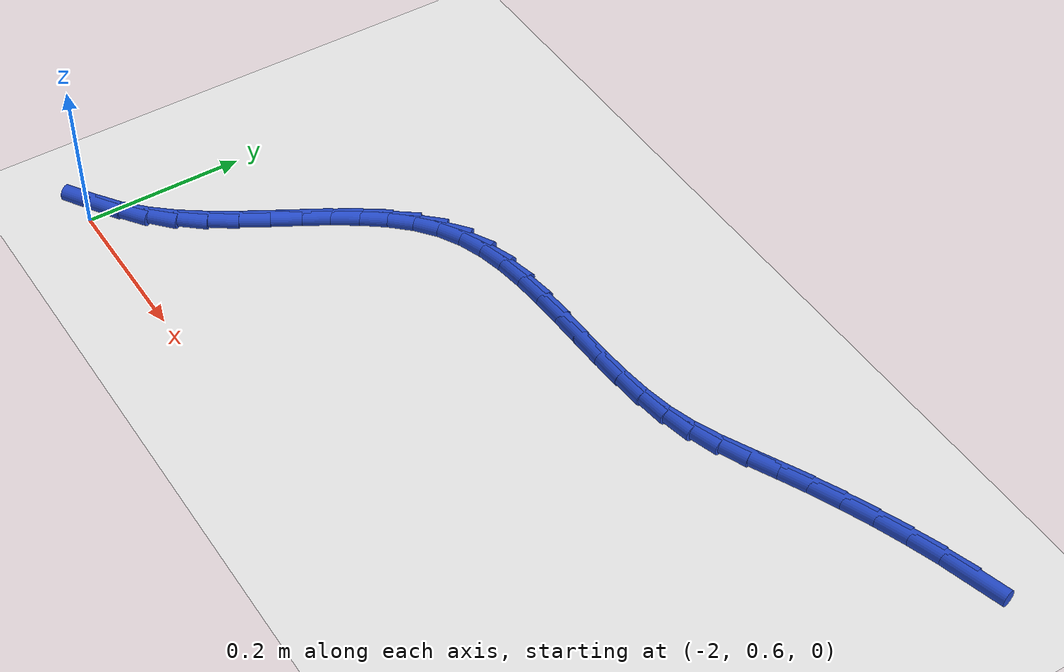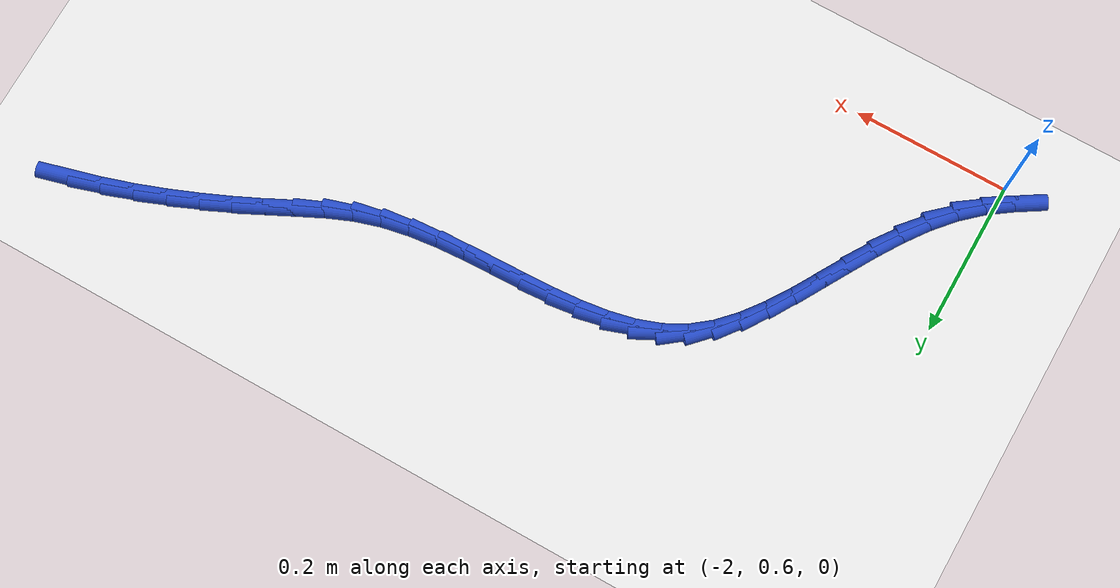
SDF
<sdf version="1.6">
 <world name="default">
  <model name="ground_plane">
   <static>1</static>
   <link name="link">
    <collision name="collision">
     <geometry><plane><normal>0 0 1</normal><size>100 100</size></plane></geometry>
     <surface><friction><ode><mu>100</mu><mu2>50</mu2></ode></friction></surface>
    </collision>
    <visual name="visual">
     <cast_shadows>0</cast_shadows>
     <geometry><plane><normal>0 0 1</normal><size>100 100</size></plane></geometry>
     <material>
      <script><uri>file://media/materials/scripts/gazebo.material</uri><name>Gazebo/WhiteGlow</name></script>
     </material>
    </visual>
   </link>
  </model>
  <model name="line">
   <link name="link_48">
    <pose>-1.008503247092322 1.144397547809534 0.01 0 1.57 0.26428421225724313</pose>
    <collision name="collision">
     <geometry><cylinder><radius>0.01</radius><length>0.08</length></cylinder></geometry>
    </collision>
    <visual name="visual">
     <material>
      <script><name>Gazebo/Blue</name><uri>file://media/materials/scripts/gazebo.material</uri></script>
     </material>
     <geometry><cylinder><radius>0.01</radius><length>0.08</length></cylinder></geometry>
    </visual>
   </link>
   <link name="link_49">
    <pose>-1.0475028634213581 1.1338436978705528 0.01 0 1.57 0.3095125050177478</pose>
    <collision name="collision">
     <geometry><cylinder><radius>0.01</radius><length>0.08</length></cylinder></geometry>
    </collision>
    <visual name="visual">
     <material>
      <script><name>Gazebo/Blue</name><uri>file://media/materials/scripts/gazebo.material</uri></script>
     </material>
     <geometry><cylinder><radius>0.01</radius><length>0.08</length></cylinder></geometry>
    </visual>
   </link>
   <link name="link_50">
    <pose>-1.0864558699905482 1.1213869130851035 0.01 0 1.57 0.34842413715925036</pose>
    <collision name="collision">
     <geometry><cylinder><radius>0.01</radius><length>0.08</length></cylinder></geometry>
    </collision>
    <visual name="visual">
     <material>
      <script><name>Gazebo/Blue</name><uri>file://media/materials/scripts/gazebo.material</uri></script>
     </material>
     <geometry><cylinder><radius>0.01</radius><length>0.08</length></cylinder></geometry>
    </visual>
   </link>
   <link name="link_51">
    <pose>-1.124988807807162 1.1073900669478505 0.01 0 1.57 0.3822929926549289</pose>
    <collision name="collision">
     <geometry><cylinder><radius>0.01</radius><length>0.08</length></cylinder></geometry>
    </collision>
    <visual name="visual">
     <material>
      <script><name>Gazebo/Blue</name><uri>file://media/materials/scripts/gazebo.material</uri></script>
     </material>
     <geometry><cylinder><radius>0.01</radius><length>0.08</length></cylinder></geometry>
    </visual>
   </link>
   <link name="link_52">
    <pose>-1.1627282178784681 1.0922160329534571 0.01 0 1.57 0.4121330123331484</pose>
    <collision name="collision">
     <geometry><cylinder><radius>0.01</radius><length>0.08</length></cylinder></geometry>
    </collision>
    <visual name="visual">
     <material>
      <script><name>Gazebo/Blue</name><uri>file://media/materials/scripts/gazebo.material</uri></script>
     </material>
     <geometry><cylinder><radius>0.01</radius><length>0.08</length></cylinder></geometry>
    </visual>
   </link>
   <link name="link_53">
    <pose>-1.1993006412117366 1.076227684596587 0.01 0 1.57 0.4387705920176841</pose>
    <collision name="collision">
     <geometry><cylinder><radius>0.01</radius><length>0.08</length></cylinder></geometry>
    </collision>
    <visual name="visual">
     <material>
      <script><name>Gazebo/Blue</name><uri>file://media/materials/scripts/gazebo.material</uri></script>
     </material>
     <geometry><cylinder><radius>0.01</radius><length>0.08</length></cylinder></geometry>
    </visual>
   </link>
   <link name="link_54">
    <pose>-1.234332618814237 1.0597878953719038 0.01 0 1.57 0.46091643209618305</pose>
    <collision name="collision">
     <geometry><cylinder><radius>0.01</radius><length>0.08</length></cylinder></geometry>
    </collision>
    <visual name="visual">
     <material>
      <script><name>Gazebo/Blue</name><uri>file://media/materials/scripts/gazebo.material</uri></script>
     </material>
     <geometry><cylinder><radius>0.01</radius><length>0.08</length></cylinder></geometry>
    </visual>
   </link>
   <link name="link_55">
    <pose>-1.2675317954856624 1.0433014937818326 0.01 0 1.57 0.45388255259020177</pose>
    <collision name="collision">
     <geometry><cylinder><radius>0.01</radius><length>0.08</length></cylinder></geometry>
    </collision>
    <visual name="visual">
     <material>
      <script><name>Gazebo/Blue</name><uri>file://media/materials/scripts/gazebo.material</uri></script>
     </material>
     <geometry><cylinder><radius>0.01</radius><length>0.08</length></cylinder></geometry>
    </visual>
   </link>
   <link name="link_56">
    <pose>-1.2995694940208837 1.0276718191451042 0.01 0 1.57 0.3983536954741635</pose>
    <collision name="collision">
     <geometry><cylinder><radius>0.01</radius><length>0.08</length></cylinder></geometry>
    </collision>
    <visual name="visual">
     <material>
      <script><name>Gazebo/Blue</name><uri>file://media/materials/scripts/gazebo.material</uri></script>
     </material>
     <geometry><cylinder><radius>0.01</radius><length>0.08</length></cylinder></geometry>
    </visual>
   </link>
   <link name="link_57">
    <pose>-1.3317488089567595 1.0141290264267466 0.01 0 1.57 0.29727718201862086</pose>
    <collision name="collision">
     <geometry><cylinder><radius>0.01</radius><length>0.08</length></cylinder></geometry>
    </collision>
    <visual name="visual">
     <material>
      <script><name>Gazebo/Blue</name><uri>file://media/materials/scripts/gazebo.material</uri></script>
     </material>
     <geometry><cylinder><radius>0.01</radius><length>0.08</length></cylinder></geometry>
    </visual>
   </link>
   <link name="link_58">
    <pose>-1.3653255453676352 1.0038426122003508 0.01 0 1.57 0.1935938666769805</pose>
    <collision name="collision">
     <geometry><cylinder><radius>0.01</radius><length>0.08</length></cylinder></geometry>
    </collision>
    <visual name="visual">
     <material>
      <script><name>Gazebo/Blue</name><uri>file://media/materials/scripts/gazebo.material</uri></script>
     </material>
     <geometry><cylinder><radius>0.01</radius><length>0.08</length></cylinder></geometry>
    </visual>
   </link>
   <link name="link_59">
    <pose>-1.4006245270764717 0.9969222742285392 0.01 0 1.57 0.11685259480461863</pose>
    <collision name="collision">
     <geometry><cylinder><radius>0.01</radius><length>0.08</length></cylinder></geometry>
    </collision>
    <visual name="visual">
     <material>
      <script><name>Gazebo/Blue</name><uri>file://media/materials/scripts/gazebo.material</uri></script>
     </material>
     <geometry><cylinder><radius>0.01</radius><length>0.08</length></cylinder></geometry>
    </visual>
   </link>
   <link name="link_60">
    <pose>-1.4372225093121849 0.9926261332896386 0.01 0 1.57 0.06500117083351974</pose>
    <collision name="collision">
     <geometry><cylinder><radius>0.01</radius><length>0.08</length></cylinder></geometry>
    </collision>
    <visual name="visual">
     <material>
      <script><name>Gazebo/Blue</name><uri>file://media/materials/scripts/gazebo.material</uri></script>
     </material>
     <geometry><cylinder><radius>0.01</radius><length>0.08</length></cylinder></geometry>
    </visual>
   </link>
   <link name="link_61">
    <pose>-1.4746750998531593 0.9901882365913276 0.01 0 1.57 0.035524021875939275</pose>
    <collision name="collision">
     <geometry><cylinder><radius>0.01</radius><length>0.08</length></cylinder></geometry>
    </collision>
    <visual name="visual">
     <material>
      <script><name>Gazebo/Blue</name><uri>file://media/materials/scripts/gazebo.material</uri></script>
     </material>
     <geometry><cylinder><radius>0.01</radius><length>0.08</length></cylinder></geometry>
    </visual>
   </link>
   <link name="link_62">
    <pose>-1.5125379064777815 0.9888426313412858 0.01 0 1.57 0.026937798888096137</pose>
    <collision name="collision">
     <geometry><cylinder><radius>0.01</radius><length>0.08</length></cylinder></geometry>
    </collision>
    <visual name="visual">
     <material>
      <script><name>Gazebo/Blue</name><uri>file://media/materials/scripts/gazebo.material</uri></script>
     </material>
     <geometry><cylinder><radius>0.01</radius><length>0.08</length></cylinder></geometry>
    </visual>
   </link>
   <link name="link_63">
    <pose>-1.5503665369644353 0.987823364747191 0.01 0 1.57 0.039039814356765554</pose>
    <collision name="collision">
     <geometry><cylinder><radius>0.01</radius><length>0.08</length></cylinder></geometry>
    </collision>
    <visual name="visual">
     <material>
      <script><name>Gazebo/Blue</name><uri>file://media/materials/scripts/gazebo.material</uri></script>
     </material>
     <geometry><cylinder><radius>0.01</radius><length>0.08</length></cylinder></geometry>
    </visual>
   </link>
   <link name="link_64">
    <pose>-1.5877165990915065 0.9863644840167225 0.01 0 1.57 0.07301462424751472</pose>
    <collision name="collision">
     <geometry><cylinder><radius>0.01</radius><length>0.08</length></cylinder></geometry>
    </collision>
    <visual name="visual">
     <material>
      <script><name>Gazebo/Blue</name><uri>file://media/materials/scripts/gazebo.material</uri></script>
     </material>
     <geometry><cylinder><radius>0.01</radius><length>0.08</length></cylinder></geometry>
    </visual>
   </link>
   <link name="link_65">
    <pose>-1.6241437006373802 0.9837000363575585 0.01 0 1.57 0.13146778592813693</pose>
    <collision name="collision">
     <geometry><cylinder><radius>0.01</radius><length>0.08</length></cylinder></geometry>
    </collision>
    <visual name="visual">
     <material>
      <script><name>Gazebo/Blue</name><uri>file://media/materials/scripts/gazebo.material</uri></script>
     </material>
     <geometry><cylinder><radius>0.01</radius><length>0.08</length></cylinder></geometry>
    </visual>
   </link>
   <link name="link_66">
    <pose>-1.6592034493804422 0.9790640689773785 0.01 0 1.57 0.21823882658381957</pose>
    <collision name="collision">
     <geometry><cylinder><radius>0.01</radius><length>0.08</length></cylinder></geometry>
    </collision>
    <visual name="visual">
     <material>
      <script><name>Gazebo/Blue</name><uri>file://media/materials/scripts/gazebo.material</uri></script>
     </material>
     <geometry><cylinder><radius>0.01</radius><length>0.08</length></cylinder></geometry>
    </visual>
   </link>
   <link name="link_67">
    <pose>-1.692451453099077 0.9716906290838608 0.01 0 1.57 0.3375286405750476</pose>
    <collision name="collision">
     <geometry><cylinder><radius>0.01</radius><length>0.08</length></cylinder></geometry>
    </collision>
    <visual name="visual">
     <material>
      <script><name>Gazebo/Blue</name><uri>file://media/materials/scripts/gazebo.material</uri></script>
     </material>
     <geometry><cylinder><radius>0.01</radius><length>0.08</length></cylinder></geometry>
    </visual>
   </link>
   <link name="link_68">
    <pose>-1.7234433195716696 0.9608137638846841 0.01 0 1.57 0.49153873706173296</pose>
    <collision name="collision">
     <geometry><cylinder><radius>0.01</radius><length>0.08</length></cylinder></geometry>
    </collision>
    <visual name="visual">
     <material>
      <script><name>Gazebo/Blue</name><uri>file://media/materials/scripts/gazebo.material</uri></script>
     </material>
     <geometry><cylinder><radius>0.01</radius><length>0.08</length></cylinder></geometry>
    </visual>
   </link>
   <link name="link_69">
    <pose>-1.7517346639520843 0.945667531974825 0.01 0 1.57 0.665476043277595</pose>
    <collision name="collision">
     <geometry><cylinder><radius>0.01</radius><length>0.08</length></cylinder></geometry>
    </collision>
    <visual name="visual">
     <material>
      <script><name>Gazebo/Blue</name><uri>file://media/materials/scripts/gazebo.material</uri></script>
     </material>
     <geometry><cylinder><radius>0.01</radius><length>0.08</length></cylinder></geometry>
    </visual>
   </link>
   <link name="link_70">
    <pose>-1.7770716135332105 0.9257801313279211 0.01 0 1.57 0.8115602309052364</pose>
    <collision name="collision">
     <geometry><cylinder><radius>0.01</radius><length>0.08</length></cylinder></geometry>
    </collision>
    <visual name="visual">
     <material>
      <script><name>Gazebo/Blue</name><uri>file://media/materials/scripts/gazebo.material</uri></script>
     </material>
     <geometry><cylinder><radius>0.01</radius><length>0.08</length></cylinder></geometry>
    </visual>
   </link>
   <link name="link_71">
    <pose>-1.7998864612433232 0.9017391587290498 0.01 0 1.57 0.9190897820527137</pose>
    <collision name="collision">
     <geometry><cylinder><radius>0.01</radius><length>0.08</length></cylinder></geometry>
    </collision>
    <visual name="visual">
     <material>
      <script><name>Gazebo/Blue</name><uri>file://media/materials/scripts/gazebo.material</uri></script>
     </material>
     <geometry><cylinder><radius>0.01</radius><length>0.08</length></cylinder></geometry>
    </visual>
   </link>
   <link name="link_72">
    <pose>-1.820765926047249 0.87437063555225 0.01 0 1.57 0.9917130987837733</pose>
    <collision name="collision">
     <geometry><cylinder><radius>0.01</radius><length>0.08</length></cylinder></geometry>
    </collision>
    <visual name="visual">
     <material>
      <script><name>Gazebo/Blue</name><uri>file://media/materials/scripts/gazebo.material</uri></script>
     </material>
     <geometry><cylinder><radius>0.01</radius><length>0.08</length></cylinder></geometry>
    </visual>
   </link>
   <link name="link_73">
    <pose>-1.840296726909814 0.8445005831715621 0.01 0 1.57 1.0340790243813807</pose>
    <collision name="collision">
     <geometry><cylinder><radius>0.01</radius><length>0.08</length></cylinder></geometry>
    </collision>
    <visual name="visual">
     <material>
      <script><name>Gazebo/Blue</name><uri>file://media/materials/scripts/gazebo.material</uri></script>
     </material>
     <geometry><cylinder><radius>0.01</radius><length>0.08</length></cylinder></geometry>
    </visual>
   </link>
   <link name="link_74">
    <pose>-1.859065582795842 0.8129550229610251 0.01 0 1.57 1.049740064281472</pose>
    <collision name="collision">
     <geometry><cylinder><radius>0.01</radius><length>0.08</length></cylinder></geometry>
    </collision>
    <visual name="visual">
     <material>
      <script><name>Gazebo/Blue</name><uri>file://media/materials/scripts/gazebo.material</uri></script>
     </material>
     <geometry><cylinder><radius>0.01</radius><length>0.08</length></cylinder></geometry>
    </visual>
   </link>
   <link name="link_75">
    <pose>-1.8776592126701594 0.7805599762946793 0.01 0 1.57 1.0405537477831672</pose>
    <collision name="collision">
     <geometry><cylinder><radius>0.01</radius><length>0.08</length></cylinder></geometry>
    </collision>
    <visual name="visual">
     <material>
      <script><name>Gazebo/Blue</name><uri>file://media/materials/scripts/gazebo.material</uri></script>
     </material>
     <geometry><cylinder><radius>0.01</radius><length>0.08</length></cylinder></geometry>
    </visual>
   </link>
   <link name="link_76">
    <pose>-1.8966643354975932 0.7481414645465645 0.01 0 1.57 1.0066808978848216</pose>
    <collision name="collision">
     <geometry><cylinder><radius>0.01</radius><length>0.08</length></cylinder></geometry>
    </collision>
    <visual name="visual">
     <material>
      <script><name>Gazebo/Blue</name><uri>file://media/materials/scripts/gazebo.material</uri></script>
     </material>
     <geometry><cylinder><radius>0.01</radius><length>0.08</length></cylinder></geometry>
    </visual>
   </link>
   <link name="link_77">
    <pose>-1.9166676702429677 0.7165255090907201 0.01 0 1.57 0.9468313965135615</pose>
    <collision name="collision">
     <geometry><cylinder><radius>0.01</radius><length>0.08</length></cylinder></geometry>
    </collision>
    <visual name="visual">
     <material>
      <script><name>Gazebo/Blue</name><uri>file://media/materials/scripts/gazebo.material</uri></script>
     </material>
     <geometry><cylinder><radius>0.01</radius><length>0.08</length></cylinder></geometry>
    </visual>
   </link>
   <link name="link_78">
    <pose>-1.9382559358711084 0.6865381313011858 0.01 0 1.57 0.8588215051297254</pose>
    <collision name="collision">
     <geometry><cylinder><radius>0.01</radius><length>0.08</length></cylinder></geometry>
    </collision>
    <visual name="visual">
     <material>
      <script><name>Gazebo/Blue</name><uri>file://media/materials/scripts/gazebo.material</uri></script>
     </material>
     <geometry><cylinder><radius>0.01</radius><length>0.08</length></cylinder></geometry>
    </visual>
   </link>
   <link name="link_79">
    <pose>-1.9620158513468415 0.6590053525520014 0.01 0 1.57 0.740806143038427</pose>
    <collision name="collision">
     <geometry><cylinder><radius>0.01</radius><length>0.08</length></cylinder></geometry>
    </collision>
    <visual name="visual">
     <material>
      <script><name>Gazebo/Blue</name><uri>file://media/materials/scripts/gazebo.material</uri></script>
     </material>
     <geometry><cylinder><radius>0.01</radius><length>0.08</length></cylinder></geometry>
    </visual>
   </link>
   <link name="link_80">
    <pose>-1.9885338214616304 0.6347528425047206 0.01 0 1.57 0.6175103595960143</pose>
    <collision name="collision">
     <geometry><cylinder><radius>0.01</radius><length>0.08</length></cylinder></geometry>
    </collision>
    <visual name="visual">
     <material>
      <script><name>Gazebo/Blue</name><uri>file://media/materials/scripts/gazebo.material</uri></script>
     </material>
     <geometry><cylinder><radius>0.01</radius><length>0.08</length></cylinder></geometry>
    </visual>
   </link>
   <link name="link_81">
    <pose>-2.0178166591382545 0.6139574261982254 0.01 0 1.57 0.5641131881064096</pose>
    <collision name="collision">
     <geometry><cylinder><radius>0.01</radius><length>0.08</length></cylinder></geometry>
    </collision>
    <visual name="visual">
     <material>
      <script><name>Gazebo/Blue</name><uri>file://media/materials/scripts/gazebo.material</uri></script>
     </material>
     <geometry><cylinder><radius>0.01</radius><length>0.08</length></cylinder></geometry>
    </visual>
   </link>
  </model>
 </world>
</sdf>
